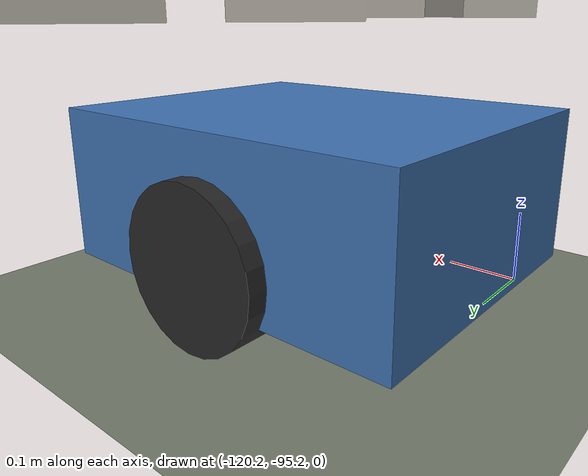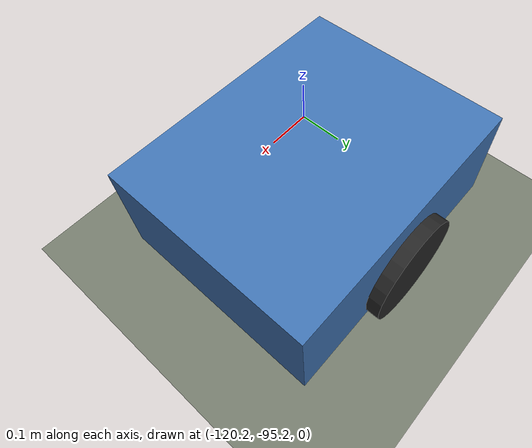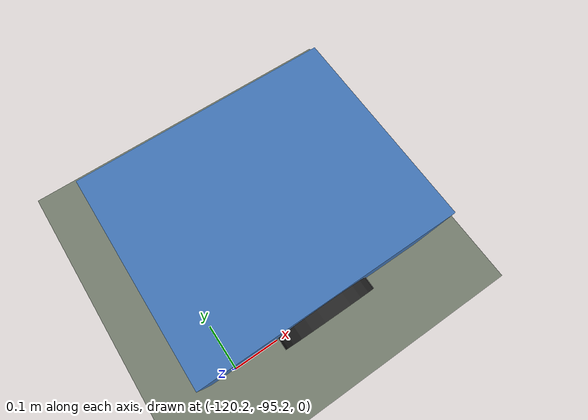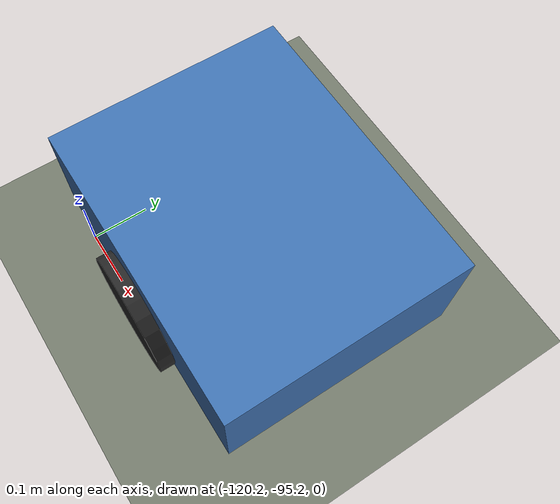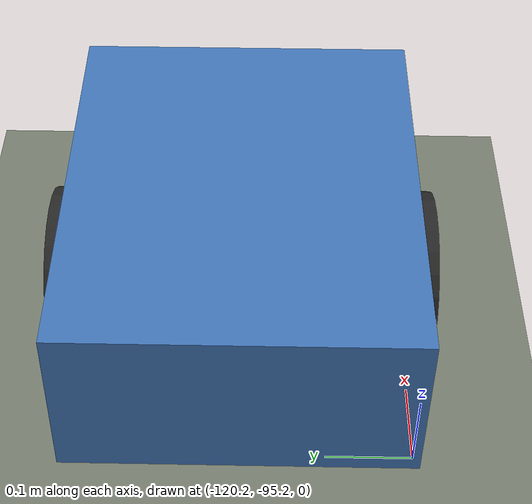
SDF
<?xml version="1.0" ?>
<sdf version="1.8">
  <world name="pittsburgh_greenfield">

    <physics name="1ms" type="ignored">
      <max_step_size>0.001</max_step_size>
      <real_time_factor>1.0</real_time_factor>
    </physics>

    <plugin filename="ignition-gazebo-physics-system"
            name="ignition::gazebo::systems::Physics"/>
    <plugin filename="ignition-gazebo-scene-broadcaster-system"
            name="ignition::gazebo::systems::SceneBroadcaster"/>
    <plugin filename="ignition-gazebo-user-commands-system"
            name="ignition::gazebo::systems::UserCommands"/>
    <!-- gpu_lidar produces nothing at all without this plugin. -->
    <plugin filename="ignition-gazebo-sensors-system"
            name="ignition::gazebo::systems::Sensors">
      <render_engine>ogre2</render_engine>
    </plugin>

    <!-- Documentary: lets a reader check the georeferencing claim against
         the OSM source. Nothing in the stack depends on it. -->
    <spherical_coordinates>
      <surface_model>EARTH_WGS84</surface_model>
      <world_frame_orientation>ENU</world_frame_orientation>
      <latitude_deg>40.4187</latitude_deg>
      <longitude_deg>-79.9376</longitude_deg>
      <elevation>293.0</elevation>
      <heading_deg>0</heading_deg>
    </spherical_coordinates>

    <scene>
      <ambient>0.35 0.35 0.38 1</ambient>
      <background>0.62 0.72 0.85 1</background>
      <shadows>false</shadows>
    </scene>

    <light type="directional" name="sun">
      <cast_shadows>false</cast_shadows>
      <pose>0 0 50 0 0 0</pose>
      <diffuse>0.95 0.93 0.88 1</diffuse>
      <specular>0.15 0.15 0.15 1</specular>
      <direction>-0.6 0.45 -0.65</direction>
    </light>

    <!-- A dim fill from the opposite side so shaded walls stay legible
         rather than going to flat black. Cheap: no shadows, no extra
         geometry pass. -->
    <light type="directional" name="fill">
      <cast_shadows>false</cast_shadows>
      <pose>0 0 50 0 0 0</pose>
      <diffuse>0.25 0.27 0.32 1</diffuse>
      <specular>0 0 0 1</specular>
      <direction>0.6 -0.45 -0.5</direction>
    </light>

    <model name="ground_plane">
      <static>true</static>
      <link name="link">
        <collision name="collision">
          <geometry><plane><normal>0 0 1</normal>
            <size>800 800</size></plane></geometry>
        </collision>
        <visual name="visual">
          <geometry><plane><normal>0 0 1</normal>
            <size>800 800</size></plane></geometry>
          <material>
            <ambient>0.35 0.37 0.33 1</ambient>
            <diffuse>0.45 0.48 0.42 1</diffuse>
          </material>
        </visual>
      </link>
    </model>

    <include>
      <uri>model://site_buildings</uri>
    </include>

    <include>
      <uri>model://roboto_bot</uri>
      <name>roboto_bot</name>
      <pose>-120.0 -95.0 0 0 0 0.000000</pose>
    </include>

  </world>
</sdf>

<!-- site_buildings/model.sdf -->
<sdf version="1.8">
  <model name="site_buildings">
    <static>true</static>
    <link name="link">
      <visual name="visual">
        <geometry><mesh><uri>meshes/buildings.obj</uri></mesh></geometry>
        <material>
          <ambient>0.62 0.60 0.56 1</ambient>
          <diffuse>0.72 0.70 0.66 1</diffuse>
          <specular>0.10 0.10 0.10 1</specular>
        </material>
      </visual>
      <collision name="c0">
        <pose>-165.047 -153.703 2.659 0 0 3.016252</pose>
        <geometry><box><size>7.374 7.242 5.318</size></box></geometry>
      </collision>
      <collision name="c1">
        <pose>-50.766 -171.260 4.396 0 0 -2.283857</pose>
        <geometry><box><size>8.706 14.586 8.792</size></box></geometry>
      </collision>
      <collision name="c2">
        <pose>-109.444 -21.414 3.729 0 0 0.091385</pose>
        <geometry><box><size>9.735 7.326 7.457</size></box></geometry>
      </collision>
      <collision name="c3">
        <pose>-95.612 -121.169 2.398 0 0 2.394903</pose>
        <geometry><box><size>17.739 6.159 4.795</size></box></geometry>
      </collision>
      <collision name="c4">
        <pose>-194.905 -196.195 2.776 0 0 1.459716</pose>
        <geometry><box><size>11.084 13.701 5.552</size></box></geometry>
      </collision>
      <collision name="c5">
        <pose>-123.894 -159.389 2.755 0 0 3.000861</pose>
        <geometry><box><size>11.721 7.492 5.511</size></box></geometry>
      </collision>
      <collision name="c6">
        <pose>-169.498 -64.292 3.745 0 0 0.092859</pose>
        <geometry><box><size>13.050 10.093 7.490</size></box></geometry>
      </collision>
      <collision name="c7">
        <pose>-161.615 -24.128 2.816 0 0 1.808324</pose>
        <geometry><box><size>12.665 8.015 5.631</size></box></geometry>
      </collision>
      <collision name="c8">
        <pose>-110.629 -59.690 5.567 0 0 1.663744</pose>
        <geometry><box><size>8.778 11.729 11.134</size></box></geometry>
      </collision>
      <collision name="c9">
        <pose>-124.921 -65.488 4.913 0 0 1.663792</pose>
        <geometry><box><size>8.498 9.402 9.826</size></box></geometry>
      </collision>
      <collision name="c10">
        <pose>-93.206 -106.084 4.394 0 0 -2.030487</pose>
        <geometry><box><size>12.421 10.499 8.787</size></box></geometry>
      </collision>
      <collision name="c11">
        <pose>-80.067 -6.483 2.821 0 0 2.672738</pose>
        <geometry><box><size>9.905 8.580 5.643</size></box></geometry>
      </collision>
      <collision name="c12">
        <pose>98.410 54.806 5.473 0 0 -1.382507</pose>
        <geometry><box><size>7.988 7.613 10.945</size></box></geometry>
      </collision>
      <collision name="c13">
        <pose>-204.249 -26.986 5.512 0 0 -1.479718</pose>
        <geometry><box><size>14.273 8.906 11.023</size></box></geometry>
      </collision>
      <collision name="c14">
        <pose>-176.085 -24.766 4.840 0 0 -3.049887</pose>
        <geometry><box><size>10.309 9.322 9.679</size></box></geometry>
      </collision>
      <collision name="c15">
        <pose>-186.888 -66.074 4.747 0 0 -3.048493</pose>
        <geometry><box><size>13.136 10.562 9.493</size></box></geometry>
      </collision>
      <collision name="c16">
        <pose>-123.266 -21.918 3.759 0 0 0.090771</pose>
        <geometry><box><size>9.563 9.567 7.518</size></box></geometry>
      </collision>
      <collision name="c17">
        <pose>-31.934 -1.924 3.607 0 0 2.695721</pose>
        <geometry><box><size>17.674 14.859 7.214</size></box></geometry>
      </collision>
      <collision name="c18">
        <pose>-127.468 12.382 3.629 0 0 -1.452664</pose>
        <geometry><box><size>17.067 8.082 7.258</size></box></geometry>
      </collision>
      <collision name="c19">
        <pose>-52.275 -33.002 4.218 0 0 2.682438</pose>
        <geometry><box><size>9.927 7.381 8.435</size></box></geometry>
      </collision>
      <collision name="c20">
        <pose>200.605 55.732 5.171 0 0 0.494192</pose>
        <geometry><box><size>6.391 10.288 10.343</size></box></geometry>
      </collision>
      <collision name="c21">
        <pose>-206.711 -68.300 4.499 0 0 0.092979</pose>
        <geometry><box><size>13.273 10.316 8.998</size></box></geometry>
      </collision>
      <collision name="c22">
        <pose>-69.475 -60.746 3.630 0 0 -0.460952</pose>
        <geometry><box><size>6.220 3.594 7.261</size></box></geometry>
      </collision>
      <collision name="c23">
        <pose>56.278 -47.359 4.196 0 0 2.256303</pose>
        <geometry><box><size>12.093 11.665 8.392</size></box></geometry>
      </collision>
      <collision name="c24">
        <pose>105.460 -0.453 5.462 0 0 2.349981</pose>
        <geometry><box><size>12.401 10.945 10.923</size></box></geometry>
      </collision>
      <collision name="c25">
        <pose>-140.770 14.190 3.119 0 0 1.680349</pose>
        <geometry><box><size>10.322 7.462 6.238</size></box></geometry>
      </collision>
      <collision name="c26">
        <pose>131.846 9.513 3.451 0 0 -2.362834</pose>
        <geometry><box><size>14.946 13.952 6.903</size></box></geometry>
      </collision>
      <collision name="c27">
        <pose>111.400 57.310 3.385 0 0 -1.382652</pose>
        <geometry><box><size>9.349 7.655 6.770</size></box></geometry>
      </collision>
      <collision name="c28">
        <pose>-115.877 14.233 2.722 0 0 -1.461072</pose>
        <geometry><box><size>12.244 7.966 5.444</size></box></geometry>
      </collision>
      <collision name="c29">
        <pose>-25.677 16.029 2.350 0 0 2.682169</pose>
        <geometry><box><size>9.868 9.701 4.699</size></box></geometry>
      </collision>
      <collision name="c30">
        <pose>-152.223 12.699 4.485 0 0 1.680421</pose>
        <geometry><box><size>12.182 7.863 8.970</size></box></geometry>
      </collision>
      <collision name="c31">
        <pose>-103.244 16.213 5.652 0 0 -1.462055</pose>
        <geometry><box><size>9.625 8.632 11.304</size></box></geometry>
      </collision>
      <collision name="c32">
        <pose>-63.538 -53.417 5.633 0 0 -2.030455</pose>
        <geometry><box><size>13.259 8.238 11.267</size></box></geometry>
      </collision>
      <collision name="c33">
        <pose>-149.346 -16.663 4.793 0 0 -1.479447</pose>
        <geometry><box><size>14.697 9.427 9.586</size></box></geometry>
      </collision>
      <collision name="c34">
        <pose>-84.846 -142.917 3.282 0 0 0.857541</pose>
        <geometry><box><size>10.794 8.688 6.564</size></box></geometry>
      </collision>
      <collision name="c35">
        <pose>-12.900 -84.062 2.277 0 0 -0.933453</pose>
        <geometry><box><size>15.475 12.513 4.554</size></box></geometry>
      </collision>
      <collision name="c36">
        <pose>61.779 47.222 5.411 0 0 -2.953097</pose>
        <geometry><box><size>8.415 9.214 10.822</size></box></geometry>
      </collision>
      <collision name="c37">
        <pose>-57.400 -42.114 3.824 0 0 -2.030558</pose>
        <geometry><box><size>6.580 11.104 7.648</size></box></geometry>
      </collision>
      <collision name="c38">
        <pose>-153.920 -183.893 4.639 0 0 -1.744077</pose>
        <geometry><box><size>10.191 8.152 9.279</size></box></geometry>
      </collision>
      <collision name="c39">
        <pose>177.629 69.570 3.988 0 0 0.188038</pose>
        <geometry><box><size>12.060 9.417 7.976</size></box></geometry>
      </collision>
      <collision name="c40">
        <pose>-136.692 -110.215 4.011 0 0 1.216527</pose>
        <geometry><box><size>11.768 8.681 8.021</size></box></geometry>
      </collision>
      <collision name="c41">
        <pose>11.362 -65.416 2.999 0 0 -2.598828</pose>
        <geometry><box><size>4.450 3.771 5.998</size></box></geometry>
      </collision>
      <collision name="c42">
        <pose>-75.034 -71.975 3.533 0 0 1.049311</pose>
        <geometry><box><size>11.731 8.970 7.066</size></box></geometry>
      </collision>
      <collision name="c43">
        <pose>-206.486 5.841 3.460 0 0 -2.988891</pose>
        <geometry><box><size>12.008 14.785 6.920</size></box></geometry>
      </collision>
      <collision name="c44">
        <pose>49.234 43.144 4.316 0 0 0.181041</pose>
        <geometry><box><size>15.589 18.806 8.632</size></box></geometry>
      </collision>
      <collision name="c45">
        <pose>-143.141 -185.507 2.632 0 0 -1.744026</pose>
        <geometry><box><size>11.228 6.833 5.263</size></box></geometry>
      </collision>
      <collision name="c46">
        <pose>34.419 41.097 5.248 0 0 0.188314</pose>
        <geometry><box><size>8.840 8.715 10.496</size></box></geometry>
      </collision>
      <collision name="c47">
        <pose>-137.639 -72.730 3.509 0 0 -1.485020</pose>
        <geometry><box><size>15.748 13.050 7.018</size></box></geometry>
      </collision>
      <collision name="c48">
        <pose>-95.916 -17.532 3.502 0 0 0.335953</pose>
        <geometry><box><size>10.374 8.418 7.005</size></box></geometry>
      </collision>
      <collision name="c49">
        <pose>-125.477 -187.769 5.426 0 0 -1.743881</pose>
        <geometry><box><size>13.238 14.172 10.852</size></box></geometry>
      </collision>
      <collision name="c50">
        <pose>-150.739 -76.812 4.395 0 0 -3.048347</pose>
        <geometry><box><size>9.779 7.952 8.790</size></box></geometry>
      </collision>
      <collision name="c51">
        <pose>-42.516 -15.307 2.772 0 0 -2.030393</pose>
        <geometry><box><size>9.950 9.214 5.544</size></box></geometry>
      </collision>
      <collision name="c52">
        <pose>-191.477 7.913 2.809 0 0 1.716172</pose>
        <geometry><box><size>13.512 12.671 5.618</size></box></geometry>
      </collision>
      <collision name="c53">
        <pose>-175.778 7.180 4.331 0 0 1.707734</pose>
        <geometry><box><size>12.995 6.340 8.663</size></box></geometry>
      </collision>
      <collision name="c54">
        <pose>75.606 49.420 2.805 0 0 1.759604</pose>
        <geometry><box><size>9.452 6.809 5.610</size></box></geometry>
      </collision>
      <collision name="c55">
        <pose>-164.898 11.117 4.262 0 0 1.680380</pose>
        <geometry><box><size>11.329 7.317 8.524</size></box></geometry>
      </collision>
      <collision name="c56">
        <pose>-69.594 -124.156 4.120 0 0 2.430516</pose>
        <geometry><box><size>13.050 10.159 8.241</size></box></geometry>
      </collision>
      <collision name="c57">
        <pose>-23.857 -25.234 4.704 0 0 1.036156</pose>
        <geometry><box><size>5.741 5.668 9.408</size></box></geometry>
      </collision>
      <collision name="c58">
        <pose>-66.543 19.340 3.579 0 0 -3.012401</pose>
        <geometry><box><size>11.042 13.242 7.158</size></box></geometry>
      </collision>
      <collision name="c59">
        <pose>-135.338 -15.657 4.957 0 0 1.661819</pose>
        <geometry><box><size>11.295 8.403 9.915</size></box></geometry>
      </collision>
      <collision name="c60">
        <pose>-191.224 -24.960 4.993 0 0 -3.050533</pose>
        <geometry><box><size>9.400 14.529 9.986</size></box></geometry>
      </collision>
      <collision name="c61">
        <pose>163.577 66.483 2.537 0 0 -2.953753</pose>
        <geometry><box><size>11.300 8.907 5.074</size></box></geometry>
      </collision>
      <collision name="c62">
        <pose>148.670 63.918 3.935 0 0 0.188506</pose>
        <geometry><box><size>12.214 9.811 7.871</size></box></geometry>
      </collision>
      <collision name="c63">
        <pose>87.587 52.684 3.071 0 0 0.188135</pose>
        <geometry><box><size>6.531 9.191 6.142</size></box></geometry>
      </collision>
      <collision name="c64">
        <pose>-181.600 -151.071 3.822 0 0 1.446867</pose>
        <geometry><box><size>5.013 3.053 7.643</size></box></geometry>
      </collision>
      <collision name="c65">
        <pose>-93.124 -151.002 2.354 0 0 -0.713500</pose>
        <geometry><box><size>11.079 6.817 4.708</size></box></geometry>
      </collision>
      <collision name="c66">
        <pose>-191.539 -178.904 4.196 0 0 1.426625</pose>
        <geometry><box><size>11.345 6.329 8.391</size></box></geometry>
      </collision>
      <collision name="c67">
        <pose>-79.939 19.716 5.650 0 0 -1.461521</pose>
        <geometry><box><size>11.362 6.711 11.301</size></box></geometry>
      </collision>
      <collision name="c68">
        <pose>-186.110 -126.092 5.558 0 0 3.029625</pose>
        <geometry><box><size>17.898 11.296 11.116</size></box></geometry>
      </collision>
      <collision name="c69">
        <pose>-131.109 -94.252 2.647 0 0 -1.668264</pose>
        <geometry><box><size>11.517 9.158 5.294</size></box></geometry>
      </collision>
      <collision name="c70">
        <pose>-91.360 18.294 2.619 0 0 1.703467</pose>
        <geometry><box><size>15.018 6.957 5.239</size></box></geometry>
      </collision>
      <collision name="c71">
        <pose>-81.792 -88.126 4.811 0 0 -0.500973</pose>
        <geometry><box><size>16.584 10.506 9.623</size></box></geometry>
      </collision>
      <collision name="c72">
        <pose>11.334 35.523 2.334 0 0 1.759178</pose>
        <geometry><box><size>9.979 8.820 4.669</size></box></geometry>
      </collision>
      <collision name="c73">
        <pose>22.924 36.088 3.839 0 0 1.758419</pose>
        <geometry><box><size>12.382 8.172 7.679</size></box></geometry>
      </collision>
      <collision name="c74">
        <pose>-2.033 32.752 3.006 0 0 -2.953808</pose>
        <geometry><box><size>11.424 10.026 6.012</size></box></geometry>
      </collision>
      <collision name="c75">
        <pose>-16.150 30.709 4.319 0 0 -2.953281</pose>
        <geometry><box><size>11.033 8.919 8.637</size></box></geometry>
      </collision>
      <collision name="c76">
        <pose>29.641 -152.389 2.967 0 0 2.064933</pose>
        <geometry><box><size>17.521 4.685 5.935</size></box></geometry>
      </collision>
      <collision name="c77">
        <pose>73.537 -104.213 4.337 0 0 2.064612</pose>
        <geometry><box><size>13.865 4.672 8.674</size></box></geometry>
      </collision>
      <collision name="c78">
        <pose>21.520 -161.489 5.729 0 0 0.493409</pose>
        <geometry><box><size>3.850 13.086 11.457</size></box></geometry>
      </collision>
      <collision name="c79">
        <pose>110.987 -165.053 5.227 0 0 2.065316</pose>
        <geometry><box><size>12.039 5.388 10.455</size></box></geometry>
      </collision>
      <collision name="c80">
        <pose>78.248 -202.153 3.686 0 0 -1.076967</pose>
        <geometry><box><size>11.174 7.027 7.372</size></box></geometry>
      </collision>
      <collision name="c81">
        <pose>180.754 -88.049 3.933 0 0 0.855184</pose>
        <geometry><box><size>10.923 8.068 7.866</size></box></geometry>
      </collision>
      <collision name="c82">
        <pose>116.230 -54.416 5.438 0 0 2.025254</pose>
        <geometry><box><size>9.904 6.232 10.875</size></box></geometry>
      </collision>
      <collision name="c83">
        <pose>143.611 -116.649 3.394 0 0 2.064636</pose>
        <geometry><box><size>11.735 9.992 6.788</size></box></geometry>
      </collision>
      <collision name="c84">
        <pose>161.527 -102.757 2.385 0 0 -2.286614</pose>
        <geometry><box><size>12.382 10.040 4.770</size></box></geometry>
      </collision>
      <collision name="c85">
        <pose>58.243 -119.160 2.969 0 0 2.064746</pose>
        <geometry><box><size>14.555 5.244 5.938</size></box></geometry>
      </collision>
      <collision name="c86">
        <pose>202.480 -52.793 4.881 0 0 -1.076563</pose>
        <geometry><box><size>10.431 5.340 9.762</size></box></geometry>
      </collision>
      <collision name="c87">
        <pose>80.440 -162.491 4.047 0 0 2.089950</pose>
        <geometry><box><size>6.740 8.696 8.094</size></box></geometry>
      </collision>
      <collision name="c88">
        <pose>79.049 -98.883 4.763 0 0 2.064607</pose>
        <geometry><box><size>16.552 4.932 9.525</size></box></geometry>
      </collision>
      <collision name="c89">
        <pose>171.103 -30.518 5.719 0 0 -1.109034</pose>
        <geometry><box><size>6.367 2.533 11.437</size></box></geometry>
      </collision>
      <collision name="c90">
        <pose>190.885 10.595 2.453 0 0 2.064633</pose>
        <geometry><box><size>17.315 5.456 4.907</size></box></geometry>
      </collision>
      <collision name="c91">
        <pose>108.813 -60.456 4.998 0 0 -1.104647</pose>
        <geometry><box><size>9.869 6.352 9.996</size></box></geometry>
      </collision>
      <collision name="c92">
        <pose>155.281 -48.449 4.989 0 0 -1.076888</pose>
        <geometry><box><size>9.131 8.633 9.978</size></box></geometry>
      </collision>
      <collision name="c93">
        <pose>37.123 -185.458 5.321 0 0 -1.077597</pose>
        <geometry><box><size>7.011 5.368 10.641</size></box></geometry>
      </collision>
      <collision name="c94">
        <pose>178.988 3.526 4.003 0 0 -1.077312</pose>
        <geometry><box><size>11.234 11.868 8.007</size></box></geometry>
      </collision>
      <collision name="c95">
        <pose>133.882 -38.509 4.432 0 0 0.438705</pose>
        <geometry><box><size>15.224 10.675 8.864</size></box></geometry>
      </collision>
      <collision name="c96">
        <pose>92.672 -185.158 3.257 0 0 -1.077105</pose>
        <geometry><box><size>9.336 5.872 6.515</size></box></geometry>
      </collision>
      <collision name="c97">
        <pose>143.470 -183.798 3.995 0 0 -0.714792</pose>
        <geometry><box><size>11.384 8.915 7.990</size></box></geometry>
      </collision>
      <collision name="c98">
        <pose>107.200 -103.234 2.341 0 0 2.065732</pose>
        <geometry><box><size>5.325 3.374 4.682</size></box></geometry>
      </collision>
      <collision name="c99">
        <pose>43.959 -178.700 2.376 0 0 2.064771</pose>
        <geometry><box><size>7.773 5.580 4.751</size></box></geometry>
      </collision>
      <collision name="c100">
        <pose>68.344 -108.533 4.749 0 0 -1.077619</pose>
        <geometry><box><size>12.997 4.950 9.497</size></box></geometry>
      </collision>
      <collision name="c101">
        <pose>62.990 -113.621 5.740 0 0 -1.077521</pose>
        <geometry><box><size>13.855 4.677 11.481</size></box></geometry>
      </collision>
      <collision name="c102">
        <pose>100.193 -108.261 5.340 0 0 -2.648116</pose>
        <geometry><box><size>10.789 6.417 10.680</size></box></geometry>
      </collision>
      <collision name="c103">
        <pose>127.511 -137.159 4.696 0 0 -1.076812</pose>
        <geometry><box><size>13.878 6.548 9.392</size></box></geometry>
      </collision>
      <collision name="c104">
        <pose>183.144 -134.437 3.896 0 0 0.854819</pose>
        <geometry><box><size>12.460 11.006 7.793</size></box></geometry>
      </collision>
      <collision name="c105">
        <pose>51.216 -139.320 3.495 0 0 -2.124367</pose>
        <geometry><box><size>13.028 8.301 6.989</size></box></geometry>
      </collision>
      <collision name="c106">
        <pose>85.156 -126.749 4.148 0 0 2.064043</pose>
        <geometry><box><size>8.374 5.375 8.295</size></box></geometry>
      </collision>
      <collision name="c107">
        <pose>145.871 -27.609 5.066 0 0 2.064737</pose>
        <geometry><box><size>17.456 5.360 10.131</size></box></geometry>
      </collision>
      <collision name="c108">
        <pose>32.862 -144.472 2.382 0 0 2.064820</pose>
        <geometry><box><size>13.067 4.896 4.763</size></box></geometry>
      </collision>
      <collision name="c109">
        <pose>100.786 -177.801 5.661 0 0 -2.647887</pose>
        <geometry><box><size>7.507 6.789 11.323</size></box></geometry>
      </collision>
      <collision name="c110">
        <pose>192.705 -122.794 3.592 0 0 2.425711</pose>
        <geometry><box><size>12.317 7.579 7.184</size></box></geometry>
      </collision>
      <collision name="c111">
        <pose>100.903 -65.292 5.406 0 0 2.064756</pose>
        <geometry><box><size>10.333 6.870 10.811</size></box></geometry>
      </collision>
      <collision name="c112">
        <pose>93.294 -72.836 4.455 0 0 2.065021</pose>
        <geometry><box><size>12.954 5.812 8.909</size></box></geometry>
      </collision>
      <collision name="c113">
        <pose>198.177 16.343 2.594 0 0 -2.647482</pose>
        <geometry><box><size>7.266 13.737 5.188</size></box></geometry>
      </collision>
      <collision name="c114">
        <pose>88.601 -151.617 4.079 0 0 -2.711043</pose>
        <geometry><box><size>8.625 6.719 8.157</size></box></geometry>
      </collision>
      <collision name="c115">
        <pose>171.881 -11.786 4.583 0 0 0.493844</pose>
        <geometry><box><size>11.813 14.213 9.167</size></box></geometry>
      </collision>
      <collision name="c116">
        <pose>25.479 -157.736 5.153 0 0 2.064548</pose>
        <geometry><box><size>13.897 4.125 10.306</size></box></geometry>
      </collision>
      <collision name="c117">
        <pose>99.279 -141.407 4.841 0 0 -1.084019</pose>
        <geometry><box><size>7.639 4.629 9.681</size></box></geometry>
      </collision>
      <collision name="c118">
        <pose>88.047 -89.315 3.257 0 0 2.064145</pose>
        <geometry><box><size>10.843 9.458 6.514</size></box></geometry>
      </collision>
      <collision name="c119">
        <pose>110.252 -84.319 2.360 0 0 2.031388</pose>
        <geometry><box><size>8.976 6.073 4.720</size></box></geometry>
      </collision>
      <collision name="c120">
        <pose>156.104 -21.167 3.100 0 0 2.064440</pose>
        <geometry><box><size>8.562 9.334 6.200</size></box></geometry>
      </collision>
      <collision name="c121">
        <pose>9.760 -182.643 2.694 0 0 0.979040</pose>
        <geometry><box><size>14.913 10.739 5.387</size></box></geometry>
      </collision>
      <collision name="c122">
        <pose>62.212 123.338 1.500 0 0 -1.374434</pose>
        <geometry><box><size>14.616 9.026 3.000</size></box></geometry>
      </collision>
      <collision name="c123">
        <pose>-131.135 120.870 4.176 0 0 0.121429</pose>
        <geometry><box><size>12.843 7.495 8.353</size></box></geometry>
      </collision>
      <collision name="c124">
        <pose>-169.805 131.043 4.655 0 0 3.129040</pose>
        <geometry><box><size>10.635 6.108 9.310</size></box></geometry>
      </collision>
      <collision name="c125">
        <pose>49.663 120.699 3.056 0 0 -1.372612</pose>
        <geometry><box><size>14.447 9.049 6.112</size></box></geometry>
      </collision>
      <collision name="c126">
        <pose>-169.472 122.193 5.581 0 0 -0.012613</pose>
        <geometry><box><size>10.584 5.664 11.161</size></box></geometry>
      </collision>
      <collision name="c127">
        <pose>75.240 126.911 2.693 0 0 -2.927699</pose>
        <geometry><box><size>10.989 9.023 5.387</size></box></geometry>
      </collision>
      <collision name="c128">
        <pose>-169.283 140.197 4.461 0 0 -1.582949</pose>
        <geometry><box><size>6.297 8.878 8.922</size></box></geometry>
      </collision>
      <collision name="c129">
        <pose>-31.121 133.757 4.732 0 0 -0.266300</pose>
        <geometry><box><size>10.170 6.906 9.464</size></box></geometry>
      </collision>
      <collision name="c130">
        <pose>-72.129 176.453 5.465 0 0 -0.141672</pose>
        <geometry><box><size>8.575 7.470 10.930</size></box></geometry>
      </collision>
      <collision name="c131">
        <pose>92.894 178.879 4.883 0 0 0.192558</pose>
        <geometry><box><size>16.074 7.909 9.765</size></box></geometry>
      </collision>
      <collision name="c132">
        <pose>-19.174 176.464 3.563 0 0 2.875551</pose>
        <geometry><box><size>10.855 7.022 7.126</size></box></geometry>
      </collision>
      <collision name="c133">
        <pose>127.883 176.170 3.792 0 0 0.212621</pose>
        <geometry><box><size>12.897 7.417 7.584</size></box></geometry>
      </collision>
      <collision name="c134">
        <pose>24.148 175.314 3.480 0 0 0.195110</pose>
        <geometry><box><size>12.085 6.033 6.961</size></box></geometry>
      </collision>
      <collision name="c135">
        <pose>-18.544 189.983 5.264 0 0 -0.235891</pose>
        <geometry><box><size>11.361 6.086 10.529</size></box></geometry>
      </collision>
      <collision name="c136">
        <pose>-37.581 108.588 5.122 0 0 2.874959</pose>
        <geometry><box><size>12.264 8.044 10.244</size></box></geometry>
      </collision>
      <collision name="c137">
        <pose>198.417 188.892 4.227 0 0 -1.364585</pose>
        <geometry><box><size>12.107 5.523 8.454</size></box></geometry>
      </collision>
      <collision name="c138">
        <pose>-169.460 177.010 3.299 0 0 -0.012375</pose>
        <geometry><box><size>10.789 5.342 6.599</size></box></geometry>
      </collision>
      <collision name="c139">
        <pose>142.854 173.122 4.197 0 0 0.212065</pose>
        <geometry><box><size>10.871 6.258 8.394</size></box></geometry>
      </collision>
      <collision name="c140">
        <pose>36.909 117.934 5.020 0 0 1.780742</pose>
        <geometry><box><size>15.485 8.988 10.039</size></box></geometry>
      </collision>
      <collision name="c141">
        <pose>48.061 156.476 4.942 0 0 0.195468</pose>
        <geometry><box><size>13.439 9.236 9.884</size></box></geometry>
      </collision>
      <collision name="c142">
        <pose>205.553 115.139 3.034 0 0 1.753933</pose>
        <geometry><box><size>21.260 8.046 6.068</size></box></geometry>
      </collision>
      <collision name="c143">
        <pose>23.937 115.329 4.893 0 0 -1.359945</pose>
        <geometry><box><size>14.938 9.309 9.785</size></box></geometry>
      </collision>
      <collision name="c144">
        <pose>150.688 145.889 2.255 0 0 -2.936768</pose>
        <geometry><box><size>11.142 7.327 4.511</size></box></geometry>
      </collision>
      <collision name="c145">
        <pose>139.940 98.496 5.544 0 0 -1.379705</pose>
        <geometry><box><size>10.993 5.152 11.088</size></box></geometry>
      </collision>
      <collision name="c146">
        <pose>22.431 164.765 3.043 0 0 -2.946694</pose>
        <geometry><box><size>13.423 8.603 6.086</size></box></geometry>
      </collision>
      <collision name="c147">
        <pose>-23.738 166.835 3.875 0 0 -0.268055</pose>
        <geometry><box><size>15.261 6.922 7.751</size></box></geometry>
      </collision>
      <collision name="c148">
        <pose>112.113 95.330 4.457 0 0 0.214265</pose>
        <geometry><box><size>15.877 10.866 8.915</size></box></geometry>
      </collision>
      <collision name="c149">
        <pose>-68.256 113.508 4.690 0 0 -0.251384</pose>
        <geometry><box><size>12.240 8.596 9.380</size></box></geometry>
      </collision>
      <collision name="c150">
        <pose>-110.057 203.292 4.191 0 0 -1.679698</pose>
        <geometry><box><size>8.903 11.851 8.382</size></box></geometry>
      </collision>
      <collision name="c151">
        <pose>127.751 192.462 3.995 0 0 -2.950650</pose>
        <geometry><box><size>13.460 7.129 7.990</size></box></geometry>
      </collision>
      <collision name="c152">
        <pose>98.913 166.755 2.683 0 0 1.760579</pose>
        <geometry><box><size>12.822 9.911 5.367</size></box></geometry>
      </collision>
      <collision name="c153">
        <pose>-166.558 167.615 3.606 0 0 0.006907</pose>
        <geometry><box><size>19.241 7.207 7.212</size></box></geometry>
      </collision>
      <collision name="c154">
        <pose>-113.207 170.423 5.460 0 0 -0.141168</pose>
        <geometry><box><size>14.053 6.227 10.920</size></box></geometry>
      </collision>
      <collision name="c155">
        <pose>-114.050 161.529 3.746 0 0 -0.164363</pose>
        <geometry><box><size>13.516 7.270 7.493</size></box></geometry>
      </collision>
      <collision name="c156">
        <pose>182.938 189.482 4.229 0 0 1.757934</pose>
        <geometry><box><size>14.873 5.331 8.457</size></box></geometry>
      </collision>
      <collision name="c157">
        <pose>-70.513 165.270 4.470 0 0 -0.129480</pose>
        <geometry><box><size>11.067 8.291 8.939</size></box></geometry>
      </collision>
      <collision name="c158">
        <pose>-169.410 87.559 2.343 0 0 -0.011971</pose>
        <geometry><box><size>11.153 6.152 4.686</size></box></geometry>
      </collision>
      <collision name="c159">
        <pose>95.919 90.034 3.760 0 0 -1.356688</pose>
        <geometry><box><size>9.237 6.229 7.520</size></box></geometry>
      </collision>
      <collision name="c160">
        <pose>-67.179 185.969 4.906 0 0 3.000897</pose>
        <geometry><box><size>15.917 7.111 9.812</size></box></geometry>
      </collision>
      <collision name="c161">
        <pose>176.030 151.277 2.768 0 0 1.779304</pose>
        <geometry><box><size>10.374 4.200 5.537</size></box></geometry>
      </collision>
      <collision name="c162">
        <pose>-33.812 120.920 4.201 0 0 2.875934</pose>
        <geometry><box><size>11.508 7.836 8.402</size></box></geometry>
      </collision>
      <collision name="c163">
        <pose>167.505 150.082 2.324 0 0 1.775495</pose>
        <geometry><box><size>11.024 4.975 4.649</size></box></geometry>
      </collision>
      <collision name="c164">
        <pose>160.587 148.721 5.546 0 0 0.204827</pose>
        <geometry><box><size>5.296 11.466 11.092</size></box></geometry>
      </collision>
      <collision name="c165">
        <pose>-26.767 146.288 5.168 0 0 -0.266124</pose>
        <geometry><box><size>10.979 7.297 10.335</size></box></geometry>
      </collision>
      <collision name="c166">
        <pose>-119.881 141.930 4.510 0 0 2.629881</pose>
        <geometry><box><size>8.669 8.313 9.020</size></box></geometry>
      </collision>
      <collision name="c167">
        <pose>-170.041 186.021 2.443 0 0 3.128665</pose>
        <geometry><box><size>11.192 5.719 4.886</size></box></geometry>
      </collision>
      <collision name="c168">
        <pose>-40.827 93.118 3.188 0 0 -0.266161</pose>
        <geometry><box><size>11.990 8.269 6.375</size></box></geometry>
      </collision>
      <collision name="c169">
        <pose>-167.353 113.412 3.179 0 0 1.558387</pose>
        <geometry><box><size>6.852 13.071 6.359</size></box></geometry>
      </collision>
      <collision name="c170">
        <pose>88.081 87.769 3.398 0 0 1.785041</pose>
        <geometry><box><size>9.344 6.175 6.795</size></box></geometry>
      </collision>
      <collision name="c171">
        <pose>-147.401 53.413 5.006 0 0 1.675094</pose>
        <geometry><box><size>11.413 7.015 10.013</size></box></geometry>
      </collision>
      <collision name="c172">
        <pose>62.898 85.803 3.302 0 0 1.785075</pose>
        <geometry><box><size>13.091 8.045 6.604</size></box></geometry>
      </collision>
      <collision name="c173">
        <pose>27.867 89.667 5.747 0 0 0.210624</pose>
        <geometry><box><size>10.628 7.130 11.493</size></box></geometry>
      </collision>
      <collision name="c174">
        <pose>-169.162 50.959 4.040 0 0 3.129881</pose>
        <geometry><box><size>13.304 9.128 8.080</size></box></geometry>
      </collision>
      <collision name="c175">
        <pose>-156.223 57.334 4.934 0 0 1.579560</pose>
        <geometry><box><size>6.763 6.569 9.868</size></box></geometry>
      </collision>
      <collision name="c176">
        <pose>-116.123 57.175 3.025 0 0 -1.466526</pose>
        <geometry><box><size>10.517 7.083 6.051</size></box></geometry>
      </collision>
      <collision name="c177">
        <pose>-136.224 54.806 4.855 0 0 -1.467229</pose>
        <geometry><box><size>10.260 6.238 9.710</size></box></geometry>
      </collision>
      <collision name="c178">
        <pose>147.510 105.609 5.112 0 0 -1.379723</pose>
        <geometry><box><size>24.940 6.777 10.224</size></box></geometry>
      </collision>
      <collision name="c179">
        <pose>124.089 199.245 5.609 0 0 0.212298</pose>
        <geometry><box><size>11.176 5.247 11.218</size></box></geometry>
      </collision>
      <collision name="c180">
        <pose>2.818 73.771 5.331 0 0 1.785036</pose>
        <geometry><box><size>9.421 6.479 10.662</size></box></geometry>
      </collision>
      <collision name="c181">
        <pose>-54.278 64.505 3.000 0 0 1.675343</pose>
        <geometry><box><size>9.763 7.279 6.000</size></box></geometry>
      </collision>
      <collision name="c182">
        <pose>-43.686 66.087 3.660 0 0 1.675054</pose>
        <geometry><box><size>12.885 7.586 7.319</size></box></geometry>
      </collision>
      <collision name="c183">
        <pose>-5.886 71.945 2.433 0 0 -1.356146</pose>
        <geometry><box><size>10.320 6.775 4.865</size></box></geometry>
      </collision>
      <collision name="c184">
        <pose>-74.413 62.184 3.511 0 0 1.674460</pose>
        <geometry><box><size>13.288 7.321 7.022</size></box></geometry>
      </collision>
      <collision name="c185">
        <pose>133.833 143.402 3.020 0 0 0.205175</pose>
        <geometry><box><size>10.799 8.528 6.039</size></box></geometry>
      </collision>
      <collision name="c186">
        <pose>-168.351 67.816 4.556 0 0 -0.012240</pose>
        <geometry><box><size>10.908 6.819 9.112</size></box></geometry>
      </collision>
      <collision name="c187">
        <pose>-67.006 124.934 4.897 0 0 -0.100609</pose>
        <geometry><box><size>14.601 7.411 9.793</size></box></geometry>
      </collision>
      <collision name="c188">
        <pose>-72.149 136.061 4.203 0 0 -0.140852</pose>
        <geometry><box><size>10.046 7.414 8.407</size></box></geometry>
      </collision>
      <collision name="c189">
        <pose>88.297 127.972 5.693 0 0 1.785114</pose>
        <geometry><box><size>15.525 8.937 11.386</size></box></geometry>
      </collision>
      <collision name="c190">
        <pose>106.654 131.969 4.065 0 0 0.186561</pose>
        <geometry><box><size>11.497 9.390 8.129</size></box></geometry>
      </collision>
      <collision name="c191">
        <pose>-124.103 131.514 4.431 0 0 2.923414</pose>
        <geometry><box><size>7.850 7.803 8.863</size></box></geometry>
      </collision>
      <collision name="c192">
        <pose>-23.944 156.636 2.766 0 0 1.305348</pose>
        <geometry><box><size>6.858 9.827 5.532</size></box></geometry>
      </collision>
      <collision name="c193">
        <pose>86.808 103.381 4.803 0 0 1.805601</pose>
        <geometry><box><size>5.987 3.551 9.607</size></box></geometry>
      </collision>
      <collision name="c194">
        <pose>160.931 181.873 2.887 0 0 -1.364425</pose>
        <geometry><box><size>15.083 6.478 5.775</size></box></geometry>
      </collision>
      <collision name="c195">
        <pose>166.924 105.276 2.269 0 0 1.792098</pose>
        <geometry><box><size>11.878 10.959 4.538</size></box></geometry>
      </collision>
      <collision name="c196">
        <pose>181.999 105.974 2.668 0 0 -2.873835</pose>
        <geometry><box><size>14.754 11.712 5.335</size></box></geometry>
      </collision>
      <collision name="c197">
        <pose>91.951 104.442 3.546 0 0 -2.938746</pose>
        <geometry><box><size>5.794 5.488 7.091</size></box></geometry>
      </collision>
      <collision name="c198">
        <pose>-104.970 95.187 3.643 0 0 1.390447</pose>
        <geometry><box><size>10.838 10.266 7.286</size></box></geometry>
      </collision>
      <collision name="c199">
        <pose>-112.191 180.484 3.910 0 0 3.000127</pose>
        <geometry><box><size>13.390 7.414 7.821</size></box></geometry>
      </collision>
      <collision name="c200">
        <pose>-84.428 60.757 3.151 0 0 -1.466799</pose>
        <geometry><box><size>11.936 7.475 6.301</size></box></geometry>
      </collision>
      <collision name="c201">
        <pose>-73.895 102.854 5.126 0 0 2.470385</pose>
        <geometry><box><size>13.935 7.508 10.251</size></box></geometry>
      </collision>
      <collision name="c202">
        <pose>26.419 184.153 3.443 0 0 0.195460</pose>
        <geometry><box><size>10.523 5.343 6.886</size></box></geometry>
      </collision>
      <collision name="c203">
        <pose>-86.770 98.495 4.799 0 0 0.265217</pose>
        <geometry><box><size>9.025 7.260 9.598</size></box></geometry>
      </collision>
      <collision name="c204">
        <pose>195.316 111.632 4.054 0 0 -1.379883</pose>
        <geometry><box><size>13.956 6.692 8.108</size></box></geometry>
      </collision>
      <collision name="c205">
        <pose>-116.139 101.788 5.477 0 0 0.892321</pose>
        <geometry><box><size>8.604 7.710 10.954</size></box></geometry>
      </collision>
      <collision name="c206">
        <pose>5.881 102.187 5.070 0 0 1.795374</pose>
        <geometry><box><size>9.146 11.666 10.139</size></box></geometry>
      </collision>
      <collision name="c207">
        <pose>-165.202 99.968 5.459 0 0 -0.011901</pose>
        <geometry><box><size>19.637 10.950 10.919</size></box></geometry>
      </collision>
      <collision name="c208">
        <pose>-126.136 56.381 4.785 0 0 -1.446379</pose>
        <geometry><box><size>14.275 7.848 9.570</size></box></geometry>
      </collision>
      <collision name="c209">
        <pose>-107.190 58.715 3.473 0 0 -1.466402</pose>
        <geometry><box><size>10.261 7.032 6.947</size></box></geometry>
      </collision>
      <collision name="c210">
        <pose>52.190 82.277 3.425 0 0 -1.356460</pose>
        <geometry><box><size>8.901 6.671 6.851</size></box></geometry>
      </collision>
      <collision name="c211">
        <pose>-122.934 110.320 4.205 0 0 -1.118608</pose>
        <geometry><box><size>7.284 8.902 8.409</size></box></geometry>
      </collision>
      <collision name="c212">
        <pose>-168.947 149.199 2.908 0 0 3.129864</pose>
        <geometry><box><size>12.333 6.430 5.816</size></box></geometry>
      </collision>
      <collision name="c213">
        <pose>-166.616 159.037 4.353 0 0 -0.008676</pose>
        <geometry><box><size>19.249 6.607 8.706</size></box></geometry>
      </collision>
      <collision name="c214">
        <pose>42.401 78.441 3.982 0 0 -1.356660</pose>
        <geometry><box><size>12.346 5.620 7.964</size></box></geometry>
      </collision>
      <collision name="c215">
        <pose>-169.378 77.915 3.783 0 0 3.129415</pose>
        <geometry><box><size>10.055 6.752 7.565</size></box></geometry>
      </collision>
      <collision name="c216">
        <pose>13.253 111.601 3.135 0 0 1.784916</pose>
        <geometry><box><size>12.182 6.932 6.270</size></box></geometry>
      </collision>
      <collision name="c217">
        <pose>-14.971 198.744 2.369 0 0 2.876117</pose>
        <geometry><box><size>13.080 5.720 4.738</size></box></geometry>
      </collision>
      <collision name="c218">
        <pose>192.116 153.672 2.901 0 0 -1.366318</pose>
        <geometry><box><size>13.711 5.653 5.802</size></box></geometry>
      </collision>
      <collision name="c219">
        <pose>-148.491 195.575 3.067 0 0 -0.011941</pose>
        <geometry><box><size>7.452 9.539 6.134</size></box></geometry>
      </collision>
      <collision name="c220">
        <pose>-66.839 195.841 3.160 0 0 3.000492</pose>
        <geometry><box><size>14.529 6.988 6.321</size></box></geometry>
      </collision>
      <collision name="c221">
        <pose>-116.541 152.074 4.333 0 0 -0.189822</pose>
        <geometry><box><size>15.833 7.112 8.666</size></box></geometry>
      </collision>
      <collision name="c222">
        <pose>183.175 154.429 4.676 0 0 -1.358366</pose>
        <geometry><box><size>14.661 8.605 9.353</size></box></geometry>
      </collision>
      <collision name="c223">
        <pose>90.577 199.888 5.593 0 0 0.192543</pose>
        <geometry><box><size>12.883 6.359 11.186</size></box></geometry>
      </collision>
      <collision name="c224">
        <pose>-74.323 149.677 5.623 0 0 1.435305</pose>
        <geometry><box><size>8.478 12.181 11.247</size></box></geometry>
      </collision>
      <collision name="c225">
        <pose>-63.559 63.000 4.697 0 0 1.675296</pose>
        <geometry><box><size>13.345 6.622 9.393</size></box></geometry>
      </collision>
      <collision name="c226">
        <pose>-96.912 62.240 2.332 0 0 1.675032</pose>
        <geometry><box><size>13.384 7.338 4.663</size></box></geometry>
      </collision>
      <collision name="c227">
        <pose>19.418 149.231 5.566 0 0 0.222794</pose>
        <geometry><box><size>15.891 12.956 11.133</size></box></geometry>
      </collision>
      <collision name="c228">
        <pose>30.055 195.742 4.801 0 0 1.742100</pose>
        <geometry><box><size>10.011 8.558 9.602</size></box></geometry>
      </collision>
      <collision name="c229">
        <pose>-167.790 194.210 4.770 0 0 3.129408</pose>
        <geometry><box><size>12.782 7.252 9.539</size></box></geometry>
      </collision>
      <collision name="c230">
        <pose>169.105 182.368 5.017 0 0 -2.935204</pose>
        <geometry><box><size>6.503 12.616 10.033</size></box></geometry>
      </collision>
      <collision name="c231">
        <pose>191.691 183.534 2.594 0 0 -1.388509</pose>
        <geometry><box><size>10.215 6.819 5.189</size></box></geometry>
      </collision>
      <collision name="c232">
        <pose>-51.537 76.164 3.693 0 0 -1.467336</pose>
        <geometry><box><size>7.068 2.910 7.386</size></box></geometry>
      </collision>
      <collision name="c233">
        <pose>-107.808 189.573 4.328 0 0 -1.711002</pose>
        <geometry><box><size>6.863 7.792 8.655</size></box></geometry>
      </collision>
      <collision name="c234">
        <pose>18.913 76.037 3.132 0 0 1.785051</pose>
        <geometry><box><size>9.582 6.800 6.265</size></box></geometry>
      </collision>
      <collision name="c235">
        <pose>-72.797 76.004 3.293 0 0 -1.467339</pose>
        <geometry><box><size>7.069 5.827 6.586</size></box></geometry>
      </collision>
    </link>
  </model>
</sdf>

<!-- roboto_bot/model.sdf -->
<sdf version="1.8">
  <model name="roboto_bot">

    <link name="base_link">
      <pose>0 0 0.15 0 0 0</pose>
      <inertial>
        <pose>0.07 0 0 0 0 0</pose>
        <mass>15.0</mass>
        <!-- Solid box 0.5 x 0.4 x 0.2: I = m/12 * (a^2 + b^2) -->
        <inertia>
          <ixx>0.2500</ixx><ixy>0</ixy><ixz>0</ixz>
          <iyy>0.3625</iyy><iyz>0</iyz>
          <izz>0.5125</izz>
        </inertia>
      </inertial>
      <collision name="collision">
        <geometry><box><size>0.5 0.4 0.2</size></box></geometry>
      </collision>
      <visual name="visual">
        <geometry><box><size>0.5 0.4 0.2</size></box></geometry>
        <material>
          <ambient>0.20 0.35 0.55 1</ambient>
          <diffuse>0.25 0.45 0.70 1</diffuse>
        </material>
      </visual>

      <sensor name="gpu_lidar" type="gpu_lidar">
        <!-- Clear of the chassis: a sensor inside its own collision box
             returns range_min on every beam. -->
        <pose>0.15 0 0.15 0 0 0</pose>
        <topic>scan</topic>
        <update_rate>10</update_rate>
        <always_on>true</always_on>
        <visualize>true</visualize>
        <lidar>
          <scan>
            <horizontal>
              <samples>180</samples>
              <resolution>1</resolution>
              <min_angle>-2.356194490</min_angle>  <!-- -135 deg -->
              <max_angle>2.356194490</max_angle>   <!-- +135 deg, 270 FOV -->
            </horizontal>
            <vertical>
              <samples>1</samples>
              <min_angle>0</min_angle>
              <max_angle>0</max_angle>
            </vertical>
          </scan>
          <range>
            <min>0.15</min>
            <max>30.0</max>
            <resolution>0.01</resolution>
          </range>
          <noise>
            <type>gaussian</type>
            <mean>0.0</mean>
            <stddev>0.02</stddev>
          </noise>
        </lidar>
      </sensor>
    </link>

    <link name="wheel_left">
      <pose>0 0.2 0.10 0 0 0</pose>
      <inertial>
        <mass>1.0</mass>
        <!-- Cylinder r=0.10 h=0.05, spin axis = y.
             about axis: m r^2 / 2 ; about diameter: m/12 (3r^2 + h^2) -->
        <inertia>
          <ixx>0.002708</ixx><ixy>0</ixy><ixz>0</ixz>
          <iyy>0.005000</iyy><iyz>0</iyz>
          <izz>0.002708</izz>
        </inertia>
      </inertial>
      <collision name="collision">
        <pose>0 0 0 1.5707963 0 0</pose>
        <geometry><cylinder><radius>0.10</radius><length>0.05</length></cylinder></geometry>
        <surface>
          <friction><ode><mu>1.0</mu><mu2>1.0</mu2></ode></friction>
        </surface>
      </collision>
      <visual name="visual">
        <pose>0 0 0 1.5707963 0 0</pose>
        <geometry><cylinder><radius>0.10</radius><length>0.05</length></cylinder></geometry>
        <material>
          <ambient>0.08 0.08 0.08 1</ambient>
          <diffuse>0.15 0.15 0.15 1</diffuse>
        </material>
      </visual>
    </link>

    <link name="wheel_right">
      <pose>0 -0.2 0.10 0 0 0</pose>
      <inertial>
        <mass>1.0</mass>
        <inertia>
          <ixx>0.002708</ixx><ixy>0</ixy><ixz>0</ixz>
          <iyy>0.005000</iyy><iyz>0</iyz>
          <izz>0.002708</izz>
        </inertia>
      </inertial>
      <collision name="collision">
        <pose>0 0 0 1.5707963 0 0</pose>
        <geometry><cylinder><radius>0.10</radius><length>0.05</length></cylinder></geometry>
        <surface>
          <friction><ode><mu>1.0</mu><mu2>1.0</mu2></ode></friction>
        </surface>
      </collision>
      <visual name="visual">
        <pose>0 0 0 1.5707963 0 0</pose>
        <geometry><cylinder><radius>0.10</radius><length>0.05</length></cylinder></geometry>
        <material>
          <ambient>0.08 0.08 0.08 1</ambient>
          <diffuse>0.15 0.15 0.15 1</diffuse>
        </material>
      </visual>
    </link>

    <link name="caster">
      <pose>0.18 0 0.05 0 0 0</pose>
      <inertial>
        <mass>0.5</mass>
        <inertia>
          <ixx>0.0005</ixx><ixy>0</ixy><ixz>0</ixz>
          <iyy>0.0005</iyy><iyz>0</iyz>
          <izz>0.0005</izz>
        </inertia>
      </inertial>
      <collision name="collision">
        <geometry><sphere><radius>0.05</radius></sphere></geometry>
        <surface>
          <!-- Near-frictionless: a caster that grips fights the drive
               wheels and makes the robot veer under pure-forward commands. -->
          <friction><ode><mu>0.001</mu><mu2>0.001</mu2></ode></friction>
        </surface>
      </collision>
      <visual name="visual">
        <geometry><sphere><radius>0.05</radius></sphere></geometry>
        <material><ambient>0.3 0.3 0.3 1</ambient></material>
      </visual>
    </link>

    <joint name="joint_wheel_left" type="revolute">
      <parent>base_link</parent>
      <child>wheel_left</child>
      <axis>
        <xyz>0 1 0</xyz>
        <limit><lower>-1e16</lower><upper>1e16</upper></limit>
        <dynamics><damping>0.02</damping></dynamics>
      </axis>
    </joint>

    <joint name="joint_wheel_right" type="revolute">
      <parent>base_link</parent>
      <child>wheel_right</child>
      <axis>
        <xyz>0 1 0</xyz>
        <limit><lower>-1e16</lower><upper>1e16</upper></limit>
        <dynamics><damping>0.02</damping></dynamics>
      </axis>
    </joint>

    <joint name="joint_caster" type="ball">
      <parent>base_link</parent>
      <child>caster</child>
    </joint>

    <plugin filename="ignition-gazebo-diff-drive-system"
            name="ignition::gazebo::systems::DiffDrive">
      <left_joint>joint_wheel_left</left_joint>
      <right_joint>joint_wheel_right</right_joint>
      <!-- Must match OdomErrorModel.wheel_baseline_m in
           roboto_core/sim/odom_corruptor.py -->
      <wheel_separation>0.4</wheel_separation>
      <wheel_radius>0.10</wheel_radius>
      <max_linear_acceleration>1.0</max_linear_acceleration>
      <topic>cmd_vel</topic>
      <odom_topic>odom</odom_topic>
      <tf_topic>tf</tf_topic>
      <frame_id>odom</frame_id>
      <child_frame_id>base_link</child_frame_id>
      <odom_publish_frequency>50</odom_publish_frequency>
    </plugin>

    <plugin filename="ignition-gazebo-pose-publisher-system"
            name="ignition::gazebo::systems::PosePublisher">
      <publish_link_pose>false</publish_link_pose>
      <publish_model_pose>true</publish_model_pose>
      <publish_nested_model_pose>false</publish_nested_model_pose>
      <use_pose_vector_msg>true</use_pose_vector_msg>
      <update_frequency>50</update_frequency>
    </plugin>

    <plugin filename="ignition-gazebo-joint-state-publisher-system"
            name="ignition::gazebo::systems::JointStatePublisher">
      <joint_name>joint_wheel_left</joint_name>
      <joint_name>joint_wheel_right</joint_name>
    </plugin>

  </model>
</sdf>
